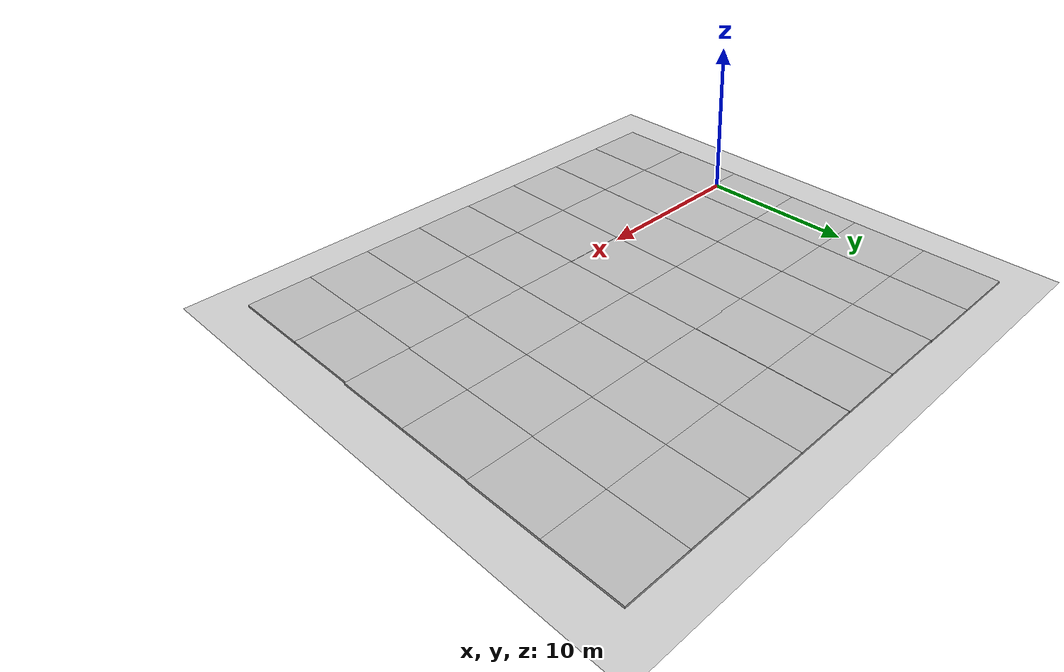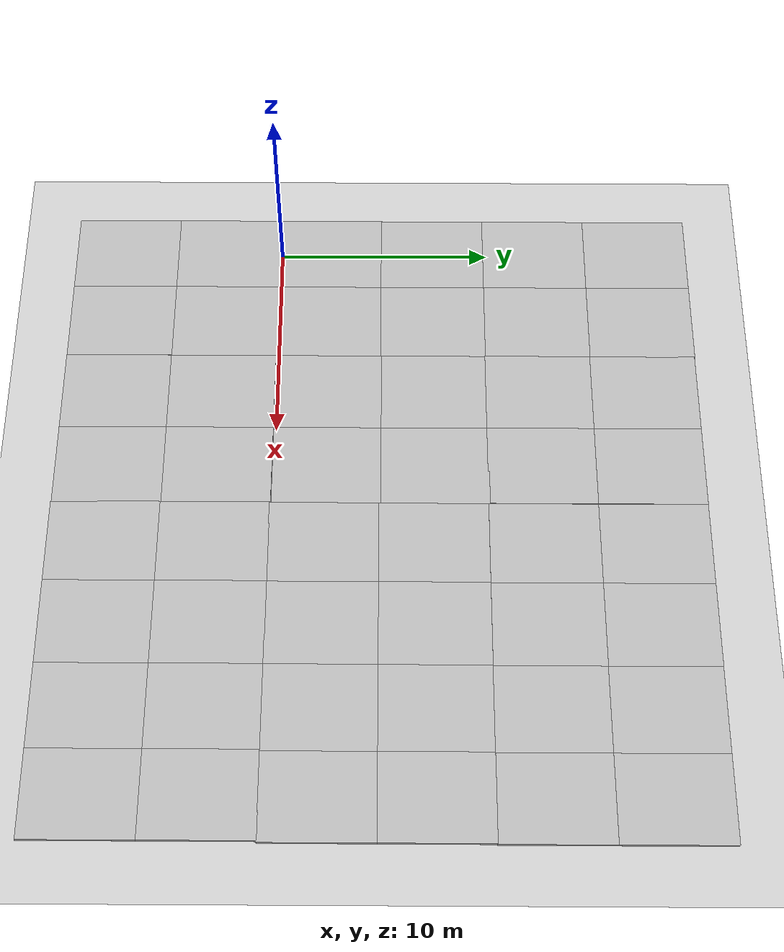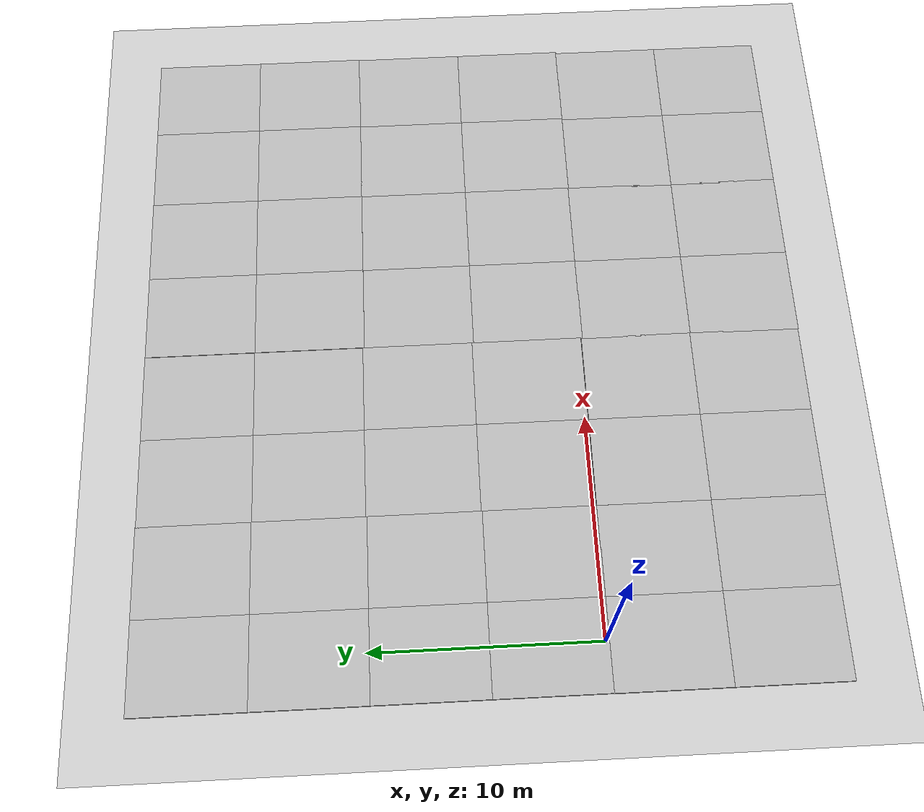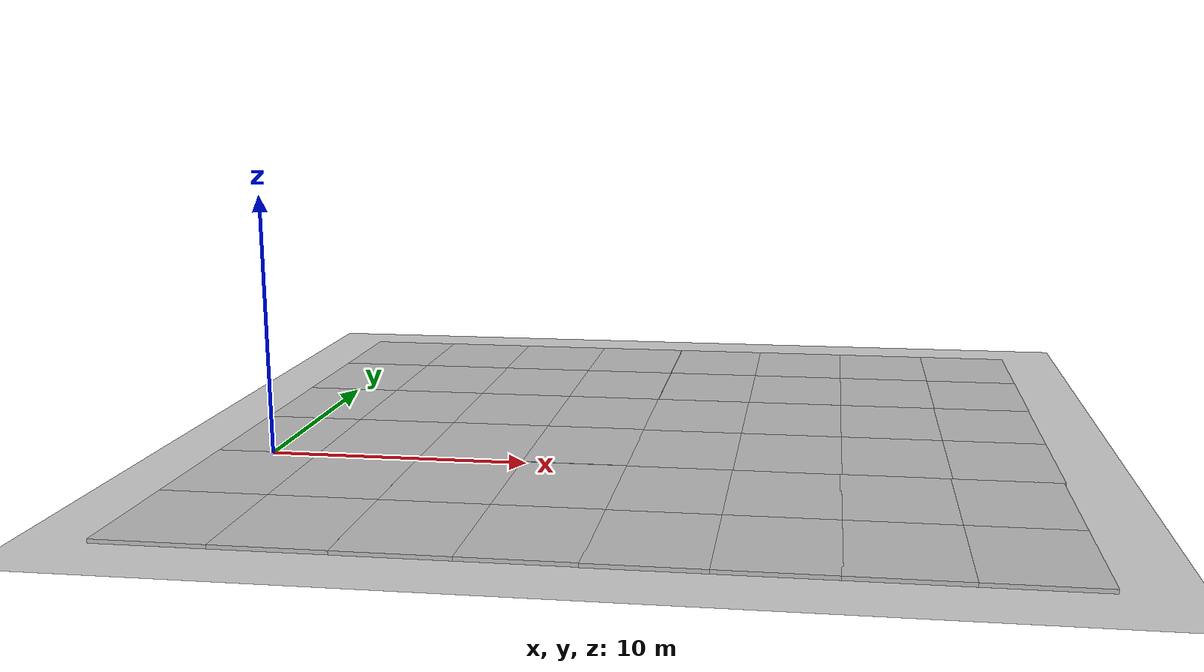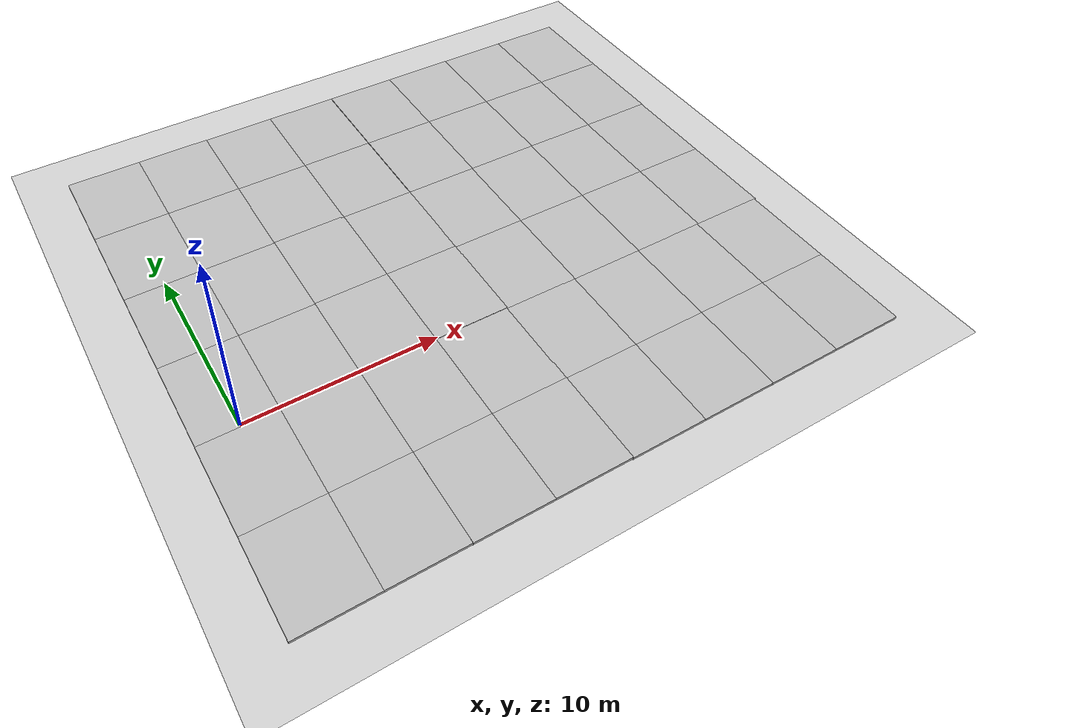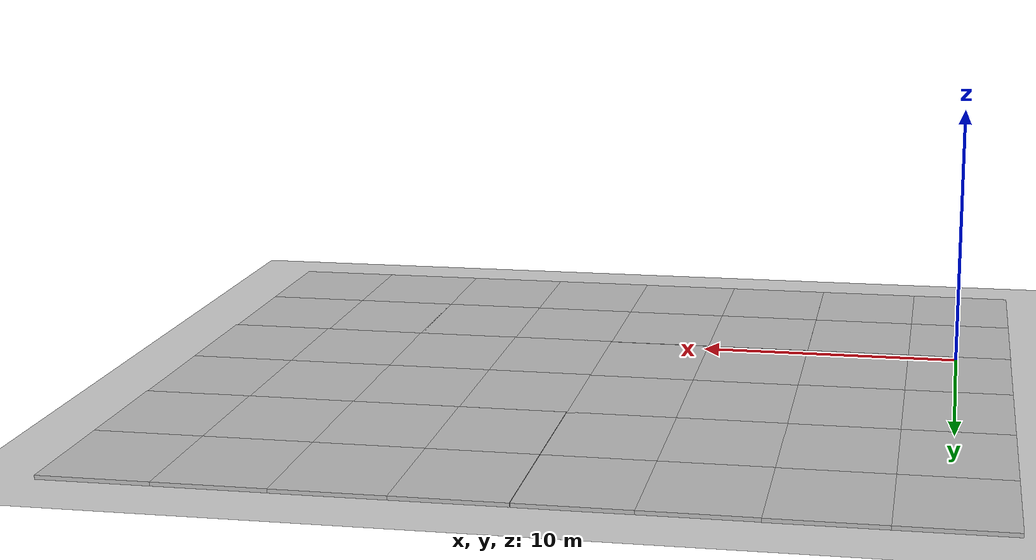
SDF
<sdf version="1.7">
 <world name="default">
  <light name="sun" type="directional">
   <pose>0 0 10 0 -0 0</pose>
   <diffuse>0.8 0.8 0.8 1</diffuse>
   <specular>0.1 0.1 0.1 1</specular>
   <attenuation>
    <range>1000</range>
    <constant>0.9</constant>
    <linear>0.01</linear>
    <quadratic>0.001</quadratic>
   </attenuation>
   <direction>-0.5 0.5 -1</direction>
   <spot><inner_angle>0</inner_angle><outer_angle>0</outer_angle><falloff>0</falloff></spot>
  </light>
  <model name="ground_plane">
   <static>1</static>
   <link name="link">
    <collision name="collision">
     <geometry><plane><normal>0 0 1</normal><size>100 100</size></plane></geometry>
     <surface><friction><ode><mu>100</mu><mu2>50</mu2></ode></friction></surface>
    </collision>
    <visual name="visual">
     <cast_shadows>0</cast_shadows>
     <geometry><plane><normal>0 0 1</normal><size>100 100</size></plane></geometry>
     <material>
      <script><uri>file://media/materials/scripts/gazebo.material</uri><name>Gazebo/Grey</name></script>
     </material>
    </visual>
   </link>
  </model>
  <gravity>0 0 -9.8</gravity>
  <magnetic_field>6e-06 2.3e-05 -4.2e-05</magnetic_field>
  <atmosphere type="adiabatic"/>
  <physics name="default_physics" default="0" type="ode">
   <max_step_size>0.001</max_step_size>
   <real_time_factor>1</real_time_factor>
   <real_time_update_rate>1000</real_time_update_rate>
  </physics>
  <scene><ambient>0.4 0.4 0.4 1</ambient><background>0.7 0.7 0.7 1</background><shadows>1</shadows></scene>
  <spherical_coordinates>
   <surface_model>EARTH_WGS84</surface_model>
   <latitude_deg>0</latitude_deg>
   <longitude_deg>0</longitude_deg>
   <elevation>0</elevation>
   <heading_deg>0</heading_deg>
  </spherical_coordinates>
  <model name="mud_box">
   <static>1</static>
   <link name="link">
    <collision name="collision"><geometry><box><size>8 10 0.2</size></box></geometry></collision>
    <visual name="visual_1">
     <pose>-2 2.5 0 0 -0 0</pose>
     <cast_shadows>0</cast_shadows>
     <geometry><box><size>4 5 0.2</size></box></geometry>
     <material>
      <script>
       <uri>model://mud_box/materials/scripts</uri>
       <uri>model://mud_box/materials/textures</uri>
       <name>vrc/mud</name>
      </script>
     </material>
    </visual>
    <visual name="visual_2">
     <pose>2 2.5 0 0 -0 0</pose>
     <cast_shadows>0</cast_shadows>
     <geometry><box><size>4 5 0.2</size></box></geometry>
     <material>
      <script>
       <uri>model://mud_box/materials/scripts</uri>
       <uri>model://mud_box/materials/textures</uri>
       <name>vrc/mud</name>
      </script>
     </material>
    </visual>
    <visual name="visual_3">
     <pose>2 -2.5 0 0 -0 0</pose>
     <cast_shadows>0</cast_shadows>
     <geometry><box><size>4 5 0.2</size></box></geometry>
     <material>
      <script>
       <uri>model://mud_box/materials/scripts</uri>
       <uri>model://mud_box/materials/textures</uri>
       <name>vrc/mud</name>
      </script>
     </material>
    </visual>
    <visual name="visual_4">
     <pose>-2 -2.5 0 0 -0 0</pose>
     <cast_shadows>0</cast_shadows>
     <geometry><box><size>4 5 0.2</size></box></geometry>
     <material>
      <script>
       <uri>model://mud_box/materials/scripts</uri>
       <uri>model://mud_box/materials/textures</uri>
       <name>vrc/mud</name>
      </script>
     </material>
    </visual>
   </link>
   <pose>9.8505 14.8027 0 0 -0 0</pose>
  </model>
  <model name="mud_box_0">
   <static>1</static>
   <link name="link">
    <collision name="collision"><geometry><box><size>8 10 0.2</size></box></geometry></collision>
    <visual name="visual_1">
     <pose>-2 2.5 0 0 -0 0</pose>
     <cast_shadows>0</cast_shadows>
     <geometry><box><size>4 5 0.2</size></box></geometry>
     <material>
      <script>
       <uri>model://mud_box/materials/scripts</uri>
       <uri>model://mud_box/materials/textures</uri>
       <name>vrc/mud</name>
      </script>
     </material>
    </visual>
    <visual name="visual_2">
     <pose>2 2.5 0 0 -0 0</pose>
     <cast_shadows>0</cast_shadows>
     <geometry><box><size>4 5 0.2</size></box></geometry>
     <material>
      <script>
       <uri>model://mud_box/materials/scripts</uri>
       <uri>model://mud_box/materials/textures</uri>
       <name>vrc/mud</name>
      </script>
     </material>
    </visual>
    <visual name="visual_3">
     <pose>2 -2.5 0 0 -0 0</pose>
     <cast_shadows>0</cast_shadows>
     <geometry><box><size>4 5 0.2</size></box></geometry>
     <material>
      <script>
       <uri>model://mud_box/materials/scripts</uri>
       <uri>model://mud_box/materials/textures</uri>
       <name>vrc/mud</name>
      </script>
     </material>
    </visual>
    <visual name="visual_4">
     <pose>-2 -2.5 0 0 -0 0</pose>
     <cast_shadows>0</cast_shadows>
     <geometry><box><size>4 5 0.2</size></box></geometry>
     <material>
      <script>
       <uri>model://mud_box/materials/scripts</uri>
       <uri>model://mud_box/materials/textures</uri>
       <name>vrc/mud</name>
      </script>
     </material>
    </visual>
   </link>
   <pose>1.86767 4.83104 0 0 -0 0</pose>
  </model>
  <model name="mud_box_1">
   <static>1</static>
   <link name="link">
    <collision name="collision"><geometry><box><size>8 10 0.2</size></box></geometry></collision>
    <visual name="visual_1">
     <pose>-2 2.5 0 0 -0 0</pose>
     <cast_shadows>0</cast_shadows>
     <geometry><box><size>4 5 0.2</size></box></geometry>
     <material>
      <script>
       <uri>model://mud_box/materials/scripts</uri>
       <uri>model://mud_box/materials/textures</uri>
       <name>vrc/mud</name>
      </script>
     </material>
    </visual>
    <visual name="visual_2">
     <pose>2 2.5 0 0 -0 0</pose>
     <cast_shadows>0</cast_shadows>
     <geometry><box><size>4 5 0.2</size></box></geometry>
     <material>
      <script>
       <uri>model://mud_box/materials/scripts</uri>
       <uri>model://mud_box/materials/textures</uri>
       <name>vrc/mud</name>
      </script>
     </material>
    </visual>
    <visual name="visual_3">
     <pose>2 -2.5 0 0 -0 0</pose>
     <cast_shadows>0</cast_shadows>
     <geometry><box><size>4 5 0.2</size></box></geometry>
     <material>
      <script>
       <uri>model://mud_box/materials/scripts</uri>
       <uri>model://mud_box/materials/textures</uri>
       <name>vrc/mud</name>
      </script>
     </material>
    </visual>
    <visual name="visual_4">
     <pose>-2 -2.5 0 0 -0 0</pose>
     <cast_shadows>0</cast_shadows>
     <geometry><box><size>4 5 0.2</size></box></geometry>
     <material>
      <script>
       <uri>model://mud_box/materials/scripts</uri>
       <uri>model://mud_box/materials/textures</uri>
       <name>vrc/mud</name>
      </script>
     </material>
    </visual>
   </link>
   <pose>25.7581 -5.18145 0 0 -0 0</pose>
  </model>
  <model name="mud_box_2">
   <static>1</static>
   <link name="link">
    <collision name="collision"><geometry><box><size>8 10 0.2</size></box></geometry></collision>
    <visual name="visual_1">
     <pose>-2 2.5 0 0 -0 0</pose>
     <cast_shadows>0</cast_shadows>
     <geometry><box><size>4 5 0.2</size></box></geometry>
     <material>
      <script>
       <uri>model://mud_box/materials/scripts</uri>
       <uri>model://mud_box/materials/textures</uri>
       <name>vrc/mud</name>
      </script>
     </material>
    </visual>
    <visual name="visual_2">
     <pose>2 2.5 0 0 -0 0</pose>
     <cast_shadows>0</cast_shadows>
     <geometry><box><size>4 5 0.2</size></box></geometry>
     <material>
      <script>
       <uri>model://mud_box/materials/scripts</uri>
       <uri>model://mud_box/materials/textures</uri>
       <name>vrc/mud</name>
      </script>
     </material>
    </visual>
    <visual name="visual_3">
     <pose>2 -2.5 0 0 -0 0</pose>
     <cast_shadows>0</cast_shadows>
     <geometry><box><size>4 5 0.2</size></box></geometry>
     <material>
      <script>
       <uri>model://mud_box/materials/scripts</uri>
       <uri>model://mud_box/materials/textures</uri>
       <name>vrc/mud</name>
      </script>
     </material>
    </visual>
    <visual name="visual_4">
     <pose>-2 -2.5 0 0 -0 0</pose>
     <cast_shadows>0</cast_shadows>
     <geometry><box><size>4 5 0.2</size></box></geometry>
     <material>
      <script>
       <uri>model://mud_box/materials/scripts</uri>
       <uri>model://mud_box/materials/textures</uri>
       <name>vrc/mud</name>
      </script>
     </material>
    </visual>
   </link>
   <pose>1.85975 -5.14192 0 0 -0 0</pose>
  </model>
  <model name="mud_box_0_clone">
   <static>1</static>
   <link name="link">
    <collision name="collision"><geometry><box><size>8 10 0.2</size></box></geometry></collision>
    <visual name="visual_1">
     <pose>-2 2.5 0 0 -0 0</pose>
     <cast_shadows>0</cast_shadows>
     <geometry><box><size>4 5 0.2</size></box></geometry>
     <material>
      <script>
       <uri>model://mud_box/materials/scripts</uri>
       <uri>model://mud_box/materials/textures</uri>
       <name>vrc/mud</name>
      </script>
     </material>
    </visual>
    <visual name="visual_2">
     <pose>2 2.5 0 0 -0 0</pose>
     <cast_shadows>0</cast_shadows>
     <geometry><box><size>4 5 0.2</size></box></geometry>
     <material>
      <script>
       <uri>model://mud_box/materials/scripts</uri>
       <uri>model://mud_box/materials/textures</uri>
       <name>vrc/mud</name>
      </script>
     </material>
    </visual>
    <visual name="visual_3">
     <pose>2 -2.5 0 0 -0 0</pose>
     <cast_shadows>0</cast_shadows>
     <geometry><box><size>4 5 0.2</size></box></geometry>
     <material>
      <script>
       <uri>model://mud_box/materials/scripts</uri>
       <uri>model://mud_box/materials/textures</uri>
       <name>vrc/mud</name>
      </script>
     </material>
    </visual>
    <visual name="visual_4">
     <pose>-2 -2.5 0 0 -0 0</pose>
     <cast_shadows>0</cast_shadows>
     <geometry><box><size>4 5 0.2</size></box></geometry>
     <material>
      <script>
       <uri>model://mud_box/materials/scripts</uri>
       <uri>model://mud_box/materials/textures</uri>
       <name>vrc/mud</name>
      </script>
     </material>
    </visual>
   </link>
   <pose>9.86046 -5.15016 0 0 -0 0</pose>
  </model>
  <model name="mud_box_0_clone_clone">
   <static>1</static>
   <link name="link">
    <collision name="collision"><geometry><box><size>8 10 0.2</size></box></geometry></collision>
    <visual name="visual_1">
     <pose>-2 2.5 0 0 -0 0</pose>
     <cast_shadows>0</cast_shadows>
     <geometry><box><size>4 5 0.2</size></box></geometry>
     <material>
      <script>
       <uri>model://mud_box/materials/scripts</uri>
       <uri>model://mud_box/materials/textures</uri>
       <name>vrc/mud</name>
      </script>
     </material>
    </visual>
    <visual name="visual_2">
     <pose>2 2.5 0 0 -0 0</pose>
     <cast_shadows>0</cast_shadows>
     <geometry><box><size>4 5 0.2</size></box></geometry>
     <material>
      <script>
       <uri>model://mud_box/materials/scripts</uri>
       <uri>model://mud_box/materials/textures</uri>
       <name>vrc/mud</name>
      </script>
     </material>
    </visual>
    <visual name="visual_3">
     <pose>2 -2.5 0 0 -0 0</pose>
     <cast_shadows>0</cast_shadows>
     <geometry><box><size>4 5 0.2</size></box></geometry>
     <material>
      <script>
       <uri>model://mud_box/materials/scripts</uri>
       <uri>model://mud_box/materials/textures</uri>
       <name>vrc/mud</name>
      </script>
     </material>
    </visual>
    <visual name="visual_4">
     <pose>-2 -2.5 0 0 -0 0</pose>
     <cast_shadows>0</cast_shadows>
     <geometry><box><size>4 5 0.2</size></box></geometry>
     <material>
      <script>
       <uri>model://mud_box/materials/scripts</uri>
       <uri>model://mud_box/materials/textures</uri>
       <name>vrc/mud</name>
      </script>
     </material>
    </visual>
   </link>
   <pose>17.8182 -5.17973 0 0 -0 0</pose>
  </model>
  <model name="mud_box_0_clone_clone_0">
   <static>1</static>
   <link name="link">
    <collision name="collision"><geometry><box><size>8 10 0.2</size></box></geometry></collision>
    <visual name="visual_1">
     <pose>-2 2.5 0 0 -0 0</pose>
     <cast_shadows>0</cast_shadows>
     <geometry><box><size>4 5 0.2</size></box></geometry>
     <material>
      <script>
       <uri>model://mud_box/materials/scripts</uri>
       <uri>model://mud_box/materials/textures</uri>
       <name>vrc/mud</name>
      </script>
     </material>
    </visual>
    <visual name="visual_2">
     <pose>2 2.5 0 0 -0 0</pose>
     <cast_shadows>0</cast_shadows>
     <geometry><box><size>4 5 0.2</size></box></geometry>
     <material>
      <script>
       <uri>model://mud_box/materials/scripts</uri>
       <uri>model://mud_box/materials/textures</uri>
       <name>vrc/mud</name>
      </script>
     </material>
    </visual>
    <visual name="visual_3">
     <pose>2 -2.5 0 0 -0 0</pose>
     <cast_shadows>0</cast_shadows>
     <geometry><box><size>4 5 0.2</size></box></geometry>
     <material>
      <script>
       <uri>model://mud_box/materials/scripts</uri>
       <uri>model://mud_box/materials/textures</uri>
       <name>vrc/mud</name>
      </script>
     </material>
    </visual>
    <visual name="visual_4">
     <pose>-2 -2.5 0 0 -0 0</pose>
     <cast_shadows>0</cast_shadows>
     <geometry><box><size>4 5 0.2</size></box></geometry>
     <material>
      <script>
       <uri>model://mud_box/materials/scripts</uri>
       <uri>model://mud_box/materials/textures</uri>
       <name>vrc/mud</name>
      </script>
     </material>
    </visual>
   </link>
   <pose>17.8432 4.79546 0 0 -0 0</pose>
  </model>
  <model name="mud_box_0_clone_clone_1">
   <static>1</static>
   <link name="link">
    <collision name="collision"><geometry><box><size>8 10 0.2</size></box></geometry></collision>
    <visual name="visual_1">
     <pose>-2 2.5 0 0 -0 0</pose>
     <cast_shadows>0</cast_shadows>
     <geometry><box><size>4 5 0.2</size></box></geometry>
     <material>
      <script>
       <uri>model://mud_box/materials/scripts</uri>
       <uri>model://mud_box/materials/textures</uri>
       <name>vrc/mud</name>
      </script>
     </material>
    </visual>
    <visual name="visual_2">
     <pose>2 2.5 0 0 -0 0</pose>
     <cast_shadows>0</cast_shadows>
     <geometry><box><size>4 5 0.2</size></box></geometry>
     <material>
      <script>
       <uri>model://mud_box/materials/scripts</uri>
       <uri>model://mud_box/materials/textures</uri>
       <name>vrc/mud</name>
      </script>
     </material>
    </visual>
    <visual name="visual_3">
     <pose>2 -2.5 0 0 -0 0</pose>
     <cast_shadows>0</cast_shadows>
     <geometry><box><size>4 5 0.2</size></box></geometry>
     <material>
      <script>
       <uri>model://mud_box/materials/scripts</uri>
       <uri>model://mud_box/materials/textures</uri>
       <name>vrc/mud</name>
      </script>
     </material>
    </visual>
    <visual name="visual_4">
     <pose>-2 -2.5 0 0 -0 0</pose>
     <cast_shadows>0</cast_shadows>
     <geometry><box><size>4 5 0.2</size></box></geometry>
     <material>
      <script>
       <uri>model://mud_box/materials/scripts</uri>
       <uri>model://mud_box/materials/textures</uri>
       <name>vrc/mud</name>
      </script>
     </material>
    </visual>
   </link>
   <pose>25.8322 4.79818 0 0 -0 0</pose>
  </model>
  <model name="mud_box_0_clone_clone_2">
   <static>1</static>
   <link name="link">
    <collision name="collision"><geometry><box><size>8 10 0.2</size></box></geometry></collision>
    <visual name="visual_1">
     <pose>-2 2.5 0 0 -0 0</pose>
     <cast_shadows>0</cast_shadows>
     <geometry><box><size>4 5 0.2</size></box></geometry>
     <material>
      <script>
       <uri>model://mud_box/materials/scripts</uri>
       <uri>model://mud_box/materials/textures</uri>
       <name>vrc/mud</name>
      </script>
     </material>
    </visual>
    <visual name="visual_2">
     <pose>2 2.5 0 0 -0 0</pose>
     <cast_shadows>0</cast_shadows>
     <geometry><box><size>4 5 0.2</size></box></geometry>
     <material>
      <script>
       <uri>model://mud_box/materials/scripts</uri>
       <uri>model://mud_box/materials/textures</uri>
       <name>vrc/mud</name>
      </script>
     </material>
    </visual>
    <visual name="visual_3">
     <pose>2 -2.5 0 0 -0 0</pose>
     <cast_shadows>0</cast_shadows>
     <geometry><box><size>4 5 0.2</size></box></geometry>
     <material>
      <script>
       <uri>model://mud_box/materials/scripts</uri>
       <uri>model://mud_box/materials/textures</uri>
       <name>vrc/mud</name>
      </script>
     </material>
    </visual>
    <visual name="visual_4">
     <pose>-2 -2.5 0 0 -0 0</pose>
     <cast_shadows>0</cast_shadows>
     <geometry><box><size>4 5 0.2</size></box></geometry>
     <material>
      <script>
       <uri>model://mud_box/materials/scripts</uri>
       <uri>model://mud_box/materials/textures</uri>
       <name>vrc/mud</name>
      </script>
     </material>
    </visual>
   </link>
   <pose>1.86503 14.8262 0 0 -0 0</pose>
  </model>
  <model name="mud_box_4">
   <static>1</static>
   <link name="link">
    <collision name="collision"><geometry><box><size>8 10 0.2</size></box></geometry></collision>
    <visual name="visual_1">
     <pose>-2 2.5 0 0 -0 0</pose>
     <cast_shadows>0</cast_shadows>
     <geometry><box><size>4 5 0.2</size></box></geometry>
     <material>
      <script>
       <uri>model://mud_box/materials/scripts</uri>
       <uri>model://mud_box/materials/textures</uri>
       <name>vrc/mud</name>
      </script>
     </material>
    </visual>
    <visual name="visual_2">
     <pose>2 2.5 0 0 -0 0</pose>
     <cast_shadows>0</cast_shadows>
     <geometry><box><size>4 5 0.2</size></box></geometry>
     <material>
      <script>
       <uri>model://mud_box/materials/scripts</uri>
       <uri>model://mud_box/materials/textures</uri>
       <name>vrc/mud</name>
      </script>
     </material>
    </visual>
    <visual name="visual_3">
     <pose>2 -2.5 0 0 -0 0</pose>
     <cast_shadows>0</cast_shadows>
     <geometry><box><size>4 5 0.2</size></box></geometry>
     <material>
      <script>
       <uri>model://mud_box/materials/scripts</uri>
       <uri>model://mud_box/materials/textures</uri>
       <name>vrc/mud</name>
      </script>
     </material>
    </visual>
    <visual name="visual_4">
     <pose>-2 -2.5 0 0 -0 0</pose>
     <cast_shadows>0</cast_shadows>
     <geometry><box><size>4 5 0.2</size></box></geometry>
     <material>
      <script>
       <uri>model://mud_box/materials/scripts</uri>
       <uri>model://mud_box/materials/textures</uri>
       <name>vrc/mud</name>
      </script>
     </material>
    </visual>
   </link>
   <pose>9.86418 4.87263 0 0 -0 0</pose>
  </model>
  <model name="mud_box_3">
   <static>1</static>
   <link name="link">
    <collision name="collision"><geometry><box><size>8 10 0.2</size></box></geometry></collision>
    <visual name="visual_1">
     <pose>-2 2.5 0 0 -0 0</pose>
     <cast_shadows>0</cast_shadows>
     <geometry><box><size>4 5 0.2</size></box></geometry>
     <material>
      <script>
       <uri>model://mud_box/materials/scripts</uri>
       <uri>model://mud_box/materials/textures</uri>
       <name>vrc/mud</name>
      </script>
     </material>
    </visual>
    <visual name="visual_2">
     <pose>2 2.5 0 0 -0 0</pose>
     <cast_shadows>0</cast_shadows>
     <geometry><box><size>4 5 0.2</size></box></geometry>
     <material>
      <script>
       <uri>model://mud_box/materials/scripts</uri>
       <uri>model://mud_box/materials/textures</uri>
       <name>vrc/mud</name>
      </script>
     </material>
    </visual>
    <visual name="visual_3">
     <pose>2 -2.5 0 0 -0 0</pose>
     <cast_shadows>0</cast_shadows>
     <geometry><box><size>4 5 0.2</size></box></geometry>
     <material>
      <script>
       <uri>model://mud_box/materials/scripts</uri>
       <uri>model://mud_box/materials/textures</uri>
       <name>vrc/mud</name>
      </script>
     </material>
    </visual>
    <visual name="visual_4">
     <pose>-2 -2.5 0 0 -0 0</pose>
     <cast_shadows>0</cast_shadows>
     <geometry><box><size>4 5 0.2</size></box></geometry>
     <material>
      <script>
       <uri>model://mud_box/materials/scripts</uri>
       <uri>model://mud_box/materials/textures</uri>
       <name>vrc/mud</name>
      </script>
     </material>
    </visual>
   </link>
   <pose>17.8698 14.7961 0 0 -0 0</pose>
  </model>
  <model name="mud_box_5">
   <static>1</static>
   <link name="link">
    <collision name="collision"><geometry><box><size>8 10 0.2</size></box></geometry></collision>
    <visual name="visual_1">
     <pose>-2 2.5 0 0 -0 0</pose>
     <cast_shadows>0</cast_shadows>
     <geometry><box><size>4 5 0.2</size></box></geometry>
     <material>
      <script>
       <uri>model://mud_box/materials/scripts</uri>
       <uri>model://mud_box/materials/textures</uri>
       <name>vrc/mud</name>
      </script>
     </material>
    </visual>
    <visual name="visual_2">
     <pose>2 2.5 0 0 -0 0</pose>
     <cast_shadows>0</cast_shadows>
     <geometry><box><size>4 5 0.2</size></box></geometry>
     <material>
      <script>
       <uri>model://mud_box/materials/scripts</uri>
       <uri>model://mud_box/materials/textures</uri>
       <name>vrc/mud</name>
      </script>
     </material>
    </visual>
    <visual name="visual_3">
     <pose>2 -2.5 0 0 -0 0</pose>
     <cast_shadows>0</cast_shadows>
     <geometry><box><size>4 5 0.2</size></box></geometry>
     <material>
      <script>
       <uri>model://mud_box/materials/scripts</uri>
       <uri>model://mud_box/materials/textures</uri>
       <name>vrc/mud</name>
      </script>
     </material>
    </visual>
    <visual name="visual_4">
     <pose>-2 -2.5 0 0 -0 0</pose>
     <cast_shadows>0</cast_shadows>
     <geometry><box><size>4 5 0.2</size></box></geometry>
     <material>
      <script>
       <uri>model://mud_box/materials/scripts</uri>
       <uri>model://mud_box/materials/textures</uri>
       <name>vrc/mud</name>
      </script>
     </material>
    </visual>
   </link>
   <pose>25.863 14.7854 0 0 -0 0</pose>
  </model>
 </world>
</sdf>
